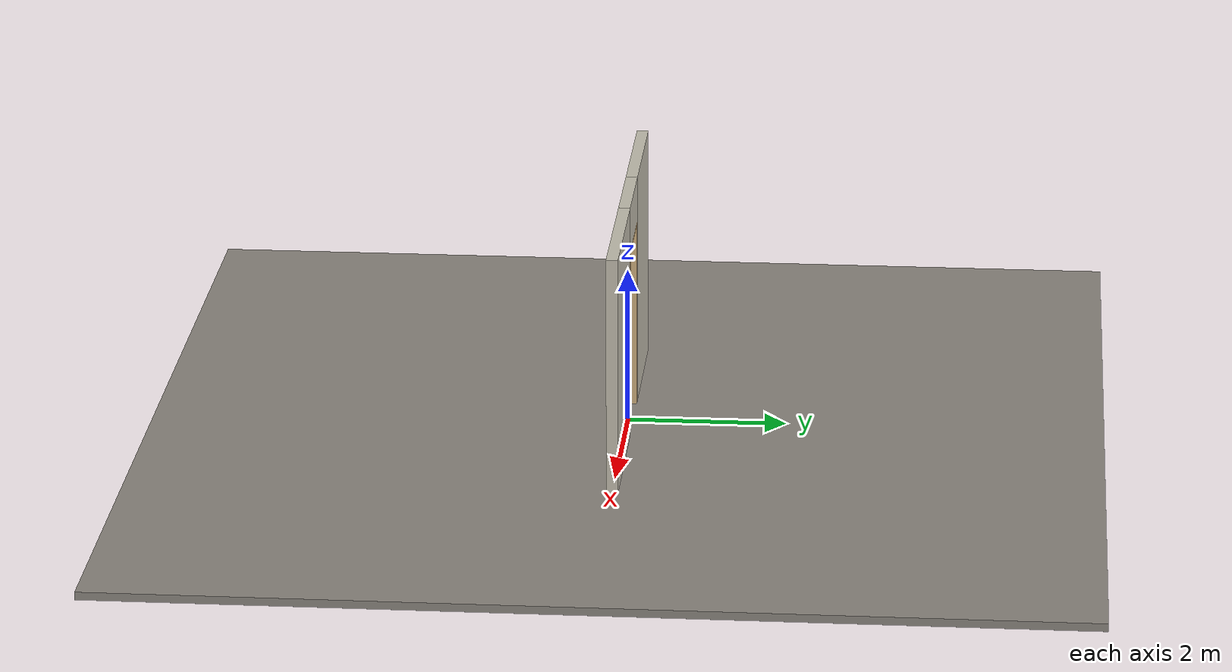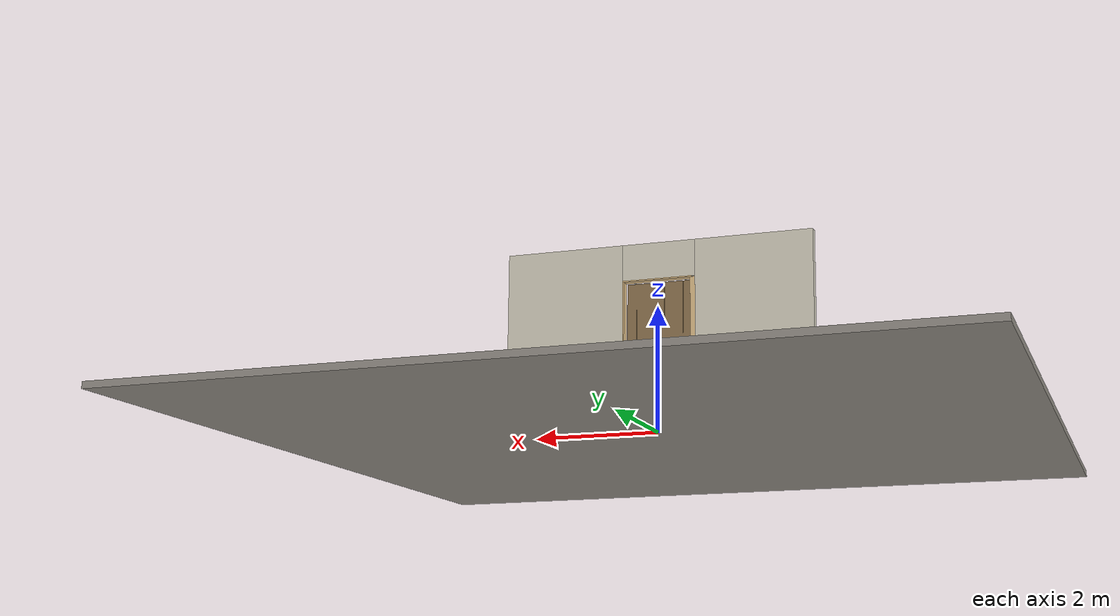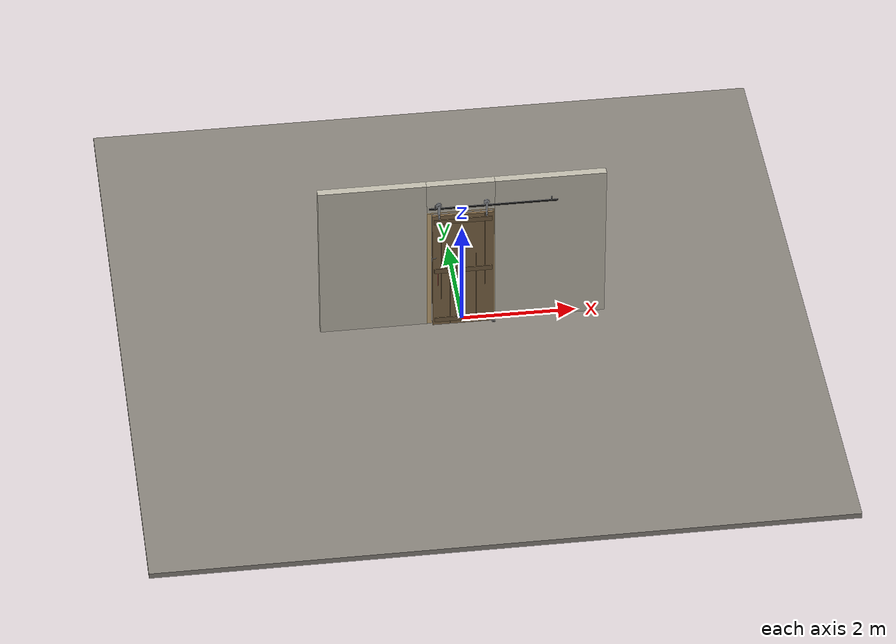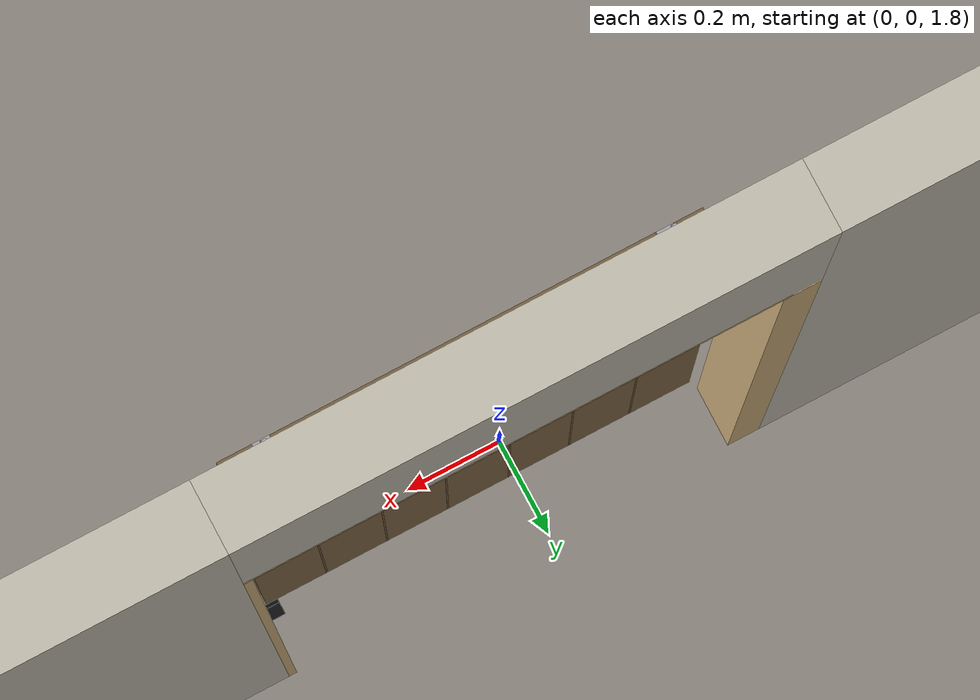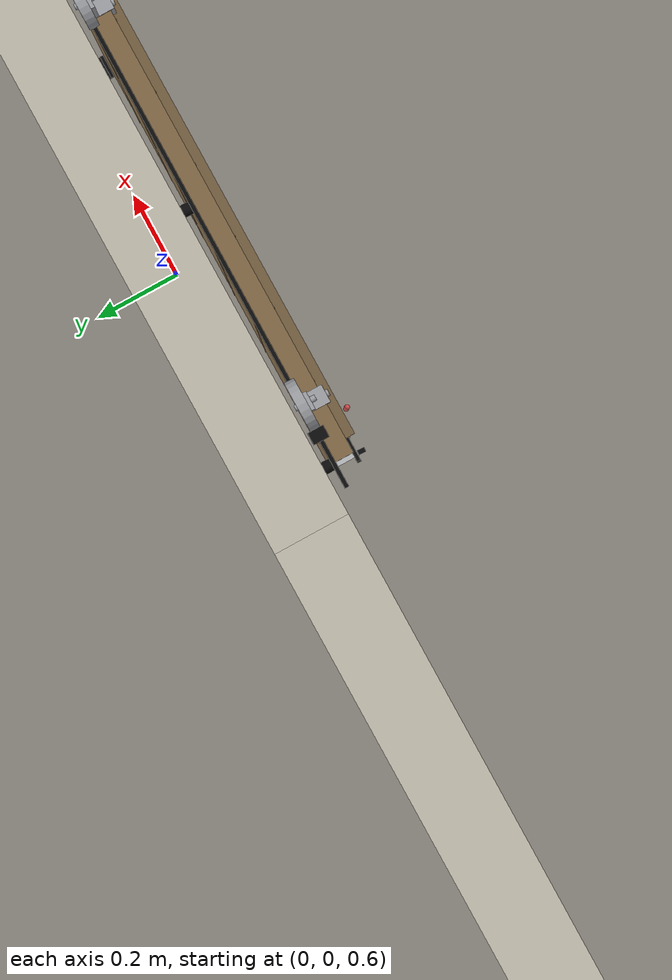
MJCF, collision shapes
<?xml version="1.0" ?>
<mujoco model="db0398_sliding_single_full">
  <compiler angle="radian" meshdir="../../hardware" texturedir="../../textures" autolimits="true" inertiafromgeom="false"/>
  <option timestep="0.002" integrator="implicitfast" cone="elliptic" impratio="10" noslip_iterations="3">
    <flag multiccd="enable"/>
  </option>
  <size memory="16M"/>
  <default>
    <geom condim="4" solref="0.005 1" solimp="0.95 0.99 0.001"/>
    <joint solreflimit="0.005 1" solimplimit="0.95 0.99 0.001"/>
    <tendon solreflimit="0.005 1"/>
    <equality solref="0.002 1"/>
  </default>
  <visual>
    <headlight ambient="0.4 0.4 0.4" diffuse="0.7 0.7 0.7" specular="0.2 0.2 0.2"/>
    <quality shadowsize="4096"/>
    <map znear="0.01" zfar="60"/>
  </visual>
  <asset>
    <mesh name="pull_2b47e55ff8" file="pull_2b47e55ff8.obj"/>
    <material name="mat_floor" rgba="0.55 0.53 0.5 1" specular="0.2" shininess="0.15" reflectance="0"/>
    <material name="mat_wall" rgba="0.78 0.76 0.7 1" specular="0.2" shininess="0.1" reflectance="0"/>
    <material name="mat_frame" rgba="0.82 0.7 0.5 1" specular="0.2" shininess="0.45" reflectance="0"/>
    <material name="mat_track" rgba="0.05 0.05 0.05 1" specular="0.38" shininess="0.3" reflectance="0.12"/>
    <material name="mat_leaf" rgba="0.524 0.425 0.287 1" specular="0.2" shininess="0.45" reflectance="0"/>
    <material name="mat_leaf_brace" rgba="0.471 0.382 0.259 1" specular="0.2" shininess="0.2" reflectance="0"/>
    <material name="mat_roller" rgba="0.65 0.66 0.68 1" specular="0.74" shininess="0.5" reflectance="0.36"/>
    <material name="mat_op_black_matte_metal" rgba="0.05 0.05 0.05 1" specular="0.38" shininess="0.3" reflectance="0.12"/>
    <material name="mat_teardrop" rgba="0.05 0.05 0.05 1" specular="0.38" shininess="0.3" reflectance="0.12"/>
    <material name="mat_hook" rgba="0.75 0.76 0.77 1" specular="0.8" shininess="0.65" reflectance="0.4"/>
    <texture name="skybox" type="skybox" builtin="gradient" rgb1="0.6 0.7 0.85" rgb2="0.9 0.92 0.95" width="256" height="256"/>
  </asset>
  <worldbody>
    <light name="sun" pos="1.5 -2.5 4" dir="-0.3 0.5 -0.8" directional="true" diffuse="0.8 0.8 0.8" specular="0.3 0.3 0.3" castshadow="true"/>
    <light name="fill" pos="-1.5 2.5 3" dir="0.3 -0.5 -0.7" directional="true" diffuse="0.35 0.35 0.4" castshadow="false"/>
    <camera name="robot_view" pos="0 -2.89375 2.02025" xyaxes="1 0 0 0 0.26963 0.962964" fovy="52"/>
    <camera name="far_view" pos="0 2.89375 2.02025" xyaxes="-1 0 0 0 -0.26963 0.962964" fovy="52"/>
    <camera name="iso" pos="2.19925 -2.43075 2.48325" xyaxes="0.741536 0.670913 0 -0.242917 0.268487 0.932151" fovy="46"/>
    <camera name="detail_handle" pos="-0.2635 -0.9815 1.33" xyaxes="0.97561 0.219512 0 -0.070934 0.315262 0.94635" fovy="38"/>
    <geom name="floor" type="box" size="6 6 0.05" pos="0 0 -0.05" material="mat_floor" group="0" contype="1" conaffinity="1" friction="0.8 0.005 0.0001" density="2400"/>
    <geom name="wall_left" type="box" size="0.93875 0.0725 1.51" pos="-1.56125 0 1.51" material="mat_wall" group="0" contype="1" conaffinity="1" friction="0.6 0.005 0.0001" density="800"/>
    <geom name="wall_right" type="box" size="0.96875 0.0725 1.51" pos="1.53125 0 1.51" material="mat_wall" group="0" contype="1" conaffinity="1" friction="0.6 0.005 0.0001" density="800"/>
    <geom name="wall_header" type="box" size="0.5925 0.0725 0.2905" pos="-0.03 0 2.7295" material="mat_wall" group="0" contype="1" conaffinity="1" friction="0.6 0.005 0.0001" density="800"/>
    <geom name="jamb_r" type="box" size="0.0095 0.0725 1.21" pos="0.553 0 1.21" material="mat_frame" group="0" contype="1" conaffinity="1" friction="0.6 0.005 0.0001" density="300"/>
    <geom name="jamb_head" type="box" size="0.5625 0.0725 0.0095" pos="0 0 2.4295" material="mat_frame" group="0" contype="1" conaffinity="1" friction="0.6 0.005 0.0001" density="300"/>
    <geom name="flat_track" type="box" size="1.117 0.004 0.02" pos="0.5335 -0.0945 2.54" material="mat_track" group="0" contype="1" conaffinity="1" friction="0.6 0.005 0.0001" density="7850"/>
    <geom name="track_standoff_0" type="cylinder" size="0.012 0.009" pos="-0.5335 -0.0815 2.54" quat="0.707107 -0.707107 0 0" material="mat_track" group="1" contype="0" conaffinity="0" density="7850"/>
    <geom name="track_standoff_1" type="cylinder" size="0.012 0.009" pos="0 -0.0815 2.54" quat="0.707107 -0.707107 0 0" material="mat_track" group="1" contype="0" conaffinity="0" density="7850"/>
    <geom name="track_standoff_2" type="cylinder" size="0.012 0.009" pos="0.5335 -0.0815 2.54" quat="0.707107 -0.707107 0 0" material="mat_track" group="1" contype="0" conaffinity="0" density="7850"/>
    <geom name="track_standoff_3" type="cylinder" size="0.012 0.009" pos="1.067 -0.0815 2.54" quat="0.707107 -0.707107 0 0" material="mat_track" group="1" contype="0" conaffinity="0" density="7850"/>
    <geom name="track_standoff_4" type="cylinder" size="0.012 0.009" pos="1.6005 -0.0815 2.54" quat="0.707107 -0.707107 0 0" material="mat_track" group="1" contype="0" conaffinity="0" density="7850"/>
    <geom name="leaf_track_stop_l" type="box" size="0.012 0.016 0.027" pos="-0.4755 -0.0945 2.585" material="mat_track" group="0" contype="1" conaffinity="1" friction="0.6 0.005 0.0001" density="7850"/>
    <geom name="leaf_track_stop_r" type="box" size="0.012 0.016 0.027" pos="1.5425 -0.0945 2.585" material="mat_track" group="0" contype="1" conaffinity="1" friction="0.6 0.005 0.0001" density="7850"/>
    <geom name="leaf_teardrop_keeper_post" type="box" size="0.005 0.006 0.018" pos="-0.5385 -0.1465 1.466" material="mat_teardrop" group="0" contype="1" conaffinity="1" friction="0.6 0.005 0.0001" density="7800"/>
    <geom name="leaf_teardrop_keeper_base" type="box" size="0.005 0.008 0.02" pos="-0.5385 -0.1605 1.47" material="mat_teardrop" group="1" contype="0" conaffinity="0" density="7800"/>
    <geom name="jamb_latch_0" type="box" size="0.0395 0.0725 1.21" pos="-0.583 0 1.21" material="mat_frame" group="0" contype="1" conaffinity="1" friction="0.6 0.005 0.0001" density="300"/>
    <geom name="floor_guide_n" type="box" size="0.028 0.004 0.009" pos="0.5335 -0.1415 0.009" material="mat_track" group="0" contype="1" conaffinity="1" friction="0.6 0.005 0.0001" density="7850"/>
    <geom name="floor_guide_n_foot" type="box" size="0.028 0.018 0.002" pos="0.5335 -0.1555 0.002" material="mat_track" group="0" contype="1" conaffinity="1" friction="0.6 0.005 0.0001" density="7850"/>
    <geom name="floor_guide_p" type="box" size="0.028 0.004 0.009" pos="0.5335 -0.0875 0.009" material="mat_track" group="0" contype="1" conaffinity="1" friction="0.6 0.005 0.0001" density="7850"/>
    <geom name="floor_guide_p_foot" type="box" size="0.028 0.018 0.002" pos="0.5335 -0.0735 0.002" material="mat_track" group="0" contype="1" conaffinity="1" friction="0.6 0.005 0.0001" density="7850"/>
    <geom name="leaf_teardrop_keeper_base_arm" type="box" size="0.005 0.0405 0.016" pos="-0.5385 -0.1125 1.47" material="mat_hook" group="1" contype="0" conaffinity="0" density="7850"/>
    <site name="approach_point" pos="0 -1.5 0" quat="1 0 0 0" size="0.05" rgba="0.2 0.9 0.2 0.5" group="4"/>
    <site name="goal_point" pos="0 1.5 0" quat="1 0 0 0" size="0.05" rgba="0.2 0.9 0.2 0.5" group="4"/>
    <site name="door_plane_center" pos="0 0 1.21" quat="1 0 0 0" size="0.02" rgba="0.2 0.9 0.2 0.5" group="4"/>
    <body name="leaf" pos="0 -0.1145 0">
      <inertial pos="-0.004398 0.000117 1.324293" mass="45.967643" quat="0.500766 -0.500511 -0.500494 -0.498225" diaginertia="4.71642482 26.436234883 31.133102184"/>
      <joint name="leaf_slide" type="slide" axis="1 0 0" limited="true" range="0 1.067" damping="4.304504" frictionloss="18.079571" armature="0.5"/>
      <geom name="leaf_slab" type="box" size="0.5335 0.022 1.2" pos="0 0 1.212" material="mat_leaf" group="0" contype="1" conaffinity="1" friction="0.35 0.005 0.0001" density="1"/>
      <geom name="leaf_plank_gap_1" type="box" size="0.002 0.023 1.19" pos="-0.381071 0 1.212" material="mat_leaf_brace" group="1" contype="0" conaffinity="0" density="1"/>
      <geom name="leaf_plank_gap_2" type="box" size="0.002 0.023 1.19" pos="-0.228643 0 1.212" material="mat_leaf_brace" group="1" contype="0" conaffinity="0" density="1"/>
      <geom name="leaf_plank_gap_3" type="box" size="0.002 0.023 1.19" pos="-0.076214 0 1.212" material="mat_leaf_brace" group="1" contype="0" conaffinity="0" density="1"/>
      <geom name="leaf_plank_gap_4" type="box" size="0.002 0.023 1.19" pos="0.076214 0 1.212" material="mat_leaf_brace" group="1" contype="0" conaffinity="0" density="1"/>
      <geom name="leaf_plank_gap_5" type="box" size="0.002 0.023 1.19" pos="0.228643 0 1.212" material="mat_leaf_brace" group="1" contype="0" conaffinity="0" density="1"/>
      <geom name="leaf_plank_gap_6" type="box" size="0.002 0.023 1.19" pos="0.381071 0 1.212" material="mat_leaf_brace" group="1" contype="0" conaffinity="0" density="1"/>
      <geom name="leaf_batten_13" type="box" size="0.5035 0.01 0.045" pos="0 -0.032 0.132" material="mat_leaf_brace" group="1" contype="0" conaffinity="0" density="1"/>
      <geom name="leaf_batten_229" type="box" size="0.5035 0.01 0.045" pos="0 -0.032 2.292" material="mat_leaf_brace" group="1" contype="0" conaffinity="0" density="1"/>
      <geom name="leaf_batten_121" type="box" size="0.5035 0.01 0.045" pos="0 -0.032 1.212" material="mat_leaf_brace" group="1" contype="0" conaffinity="0" density="1"/>
      <geom name="leaf_hanger_wheel_0" type="cylinder" size="0.05 0.01" pos="-0.4135 0.02 2.61" quat="0.707107 -0.707107 0 0" material="mat_roller" group="1" contype="0" conaffinity="0" density="7850"/>
      <geom name="leaf_hanger_mount_0" type="box" size="0.018 0.004 0.0725" pos="-0.4135 -0.026 2.3645" material="mat_roller" group="1" contype="0" conaffinity="0" density="7850"/>
      <geom name="leaf_hanger_strap_0" type="box" size="0.018 0.004 0.0925" pos="-0.4135 0.006 2.5295" material="mat_roller" group="1" contype="0" conaffinity="0" density="7850"/>
      <geom name="leaf_hanger_bend_0" type="box" size="0.018 0.02 0.004" pos="-0.4135 -0.01 2.437" material="mat_roller" group="1" contype="0" conaffinity="0" density="7850"/>
      <geom name="leaf_hanger_axle_0" type="cylinder" size="0.006 0.021" pos="-0.4135 0.013 2.61" quat="0.707107 -0.707107 0 0" material="mat_roller" group="1" contype="0" conaffinity="0" density="7850"/>
      <geom name="leaf_hanger_bolt_0_90" type="cylinder" size="0.007 0.004" pos="-0.4135 -0.032 2.322" quat="0.707107 -0.707107 0 0" material="mat_roller" group="1" contype="0" conaffinity="0" density="7850"/>
      <geom name="leaf_hanger_bolt_0_45" type="cylinder" size="0.007 0.004" pos="-0.4135 -0.032 2.367" quat="0.707107 -0.707107 0 0" material="mat_roller" group="1" contype="0" conaffinity="0" density="7850"/>
      <geom name="leaf_hanger_wheel_1" type="cylinder" size="0.05 0.01" pos="0.4135 0.02 2.61" quat="0.707107 -0.707107 0 0" material="mat_roller" group="1" contype="0" conaffinity="0" density="7850"/>
      <geom name="leaf_hanger_mount_1" type="box" size="0.018 0.004 0.0725" pos="0.4135 -0.026 2.3645" material="mat_roller" group="1" contype="0" conaffinity="0" density="7850"/>
      <geom name="leaf_hanger_strap_1" type="box" size="0.018 0.004 0.0925" pos="0.4135 0.006 2.5295" material="mat_roller" group="1" contype="0" conaffinity="0" density="7850"/>
      <geom name="leaf_hanger_bend_1" type="box" size="0.018 0.02 0.004" pos="0.4135 -0.01 2.437" material="mat_roller" group="1" contype="0" conaffinity="0" density="7850"/>
      <geom name="leaf_hanger_axle_1" type="cylinder" size="0.006 0.021" pos="0.4135 0.013 2.61" quat="0.707107 -0.707107 0 0" material="mat_roller" group="1" contype="0" conaffinity="0" density="7850"/>
      <geom name="leaf_hanger_bolt_1_90" type="cylinder" size="0.007 0.004" pos="0.4135 -0.032 2.322" quat="0.707107 -0.707107 0 0" material="mat_roller" group="1" contype="0" conaffinity="0" density="7850"/>
      <geom name="leaf_hanger_bolt_1_45" type="cylinder" size="0.007 0.004" pos="0.4135 -0.032 2.367" quat="0.707107 -0.707107 0 0" material="mat_roller" group="1" contype="0" conaffinity="0" density="7850"/>
      <geom name="leaf_pull_n" type="mesh" mesh="pull_2b47e55ff8" pos="-0.4435 -0.022 1.05" quat="0 0 -0.707107 0.707107" material="mat_op_black_matte_metal" group="1" contype="0" conaffinity="0" density="3000"/>
      <geom name="leaf_pull_col_n" type="capsule" size="0.006 0.13" pos="-0.4435 -0.067 1.05" material="mat_op_black_matte_metal" group="3" contype="1" conaffinity="1" rgba="0.8 0.3 0.3 0.25" friction="0.7 0.01 0.0001" density="3000"/>
      <site name="leaf_pull_grip_n" pos="-0.4435 -0.067 1.05" quat="1 0 0 0" size="0.012" rgba="0.2 0.9 0.2 0.5" group="4"/>
      <site name="leaf_edge_mid" pos="-0.5335 0 1.212" quat="1 0 0 0" size="0.02" rgba="0.2 0.9 0.2 0.5" group="4"/>
      <body name="leaf_teardrop" pos="-0.4735 -0.032 1.5">
        <inertial pos="-0.043422 0.00123 -0.01162" mass="0.122437" quat="0.688754 0.704878 -0.099431 0.137401" diaginertia="0.000019179 0.000140472 0.000156801"/>
        <joint name="leaf_teardrop_hinge" type="hinge" axis="0 1 0" limited="true" range="0 1.4" damping="0.005199" frictionloss="0.004386" armature="0.0001"/>
        <geom name="leaf_teardrop_top" type="box" size="0.04 0.004 0.006" pos="-0.04 0 -0.005" material="mat_teardrop" group="0" contype="1" conaffinity="1" friction="0.6 0.005 0.0001" density="7800"/>
        <geom name="leaf_teardrop_end" type="box" size="0.005 0.004 0.03" pos="-0.078 0 -0.03" material="mat_teardrop" group="0" contype="1" conaffinity="1" friction="0.6 0.005 0.0001" density="7800"/>
        <geom name="leaf_teardrop_boss" type="cylinder" size="0.008 0.008" pos="0 0.006 0" quat="0.707107 -0.707107 0 0" material="mat_teardrop" group="1" contype="0" conaffinity="0" density="7800"/>
        <site name="leaf_teardrop_grip" pos="-0.078 -0.01 -0.05" quat="1 0 0 0" size="0.01" rgba="0.2 0.9 0.2 0.5" group="4"/>
      </body>
    </body>
  </worldbody>
  <sensor>
    <jointpos name="leaf_slide_pos" joint="leaf_slide"/>
    <jointvel name="leaf_slide_vel" joint="leaf_slide"/>
    <jointpos name="leaf_teardrop_hinge_pos" joint="leaf_teardrop_hinge"/>
    <jointvel name="leaf_teardrop_hinge_vel" joint="leaf_teardrop_hinge"/>
  </sensor>
</mujoco>
